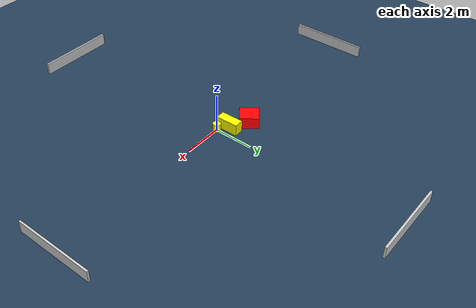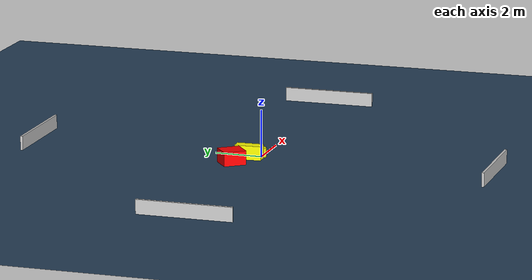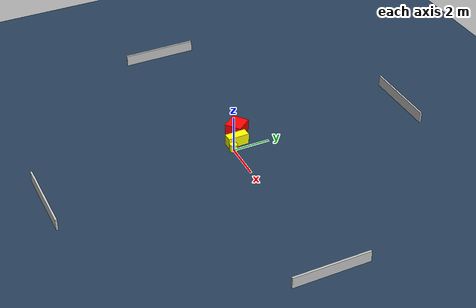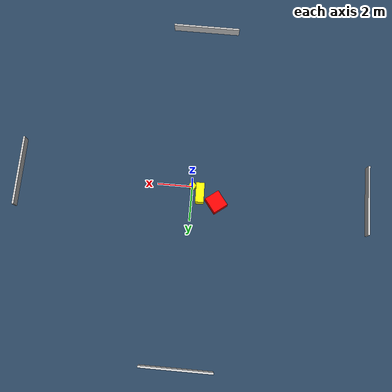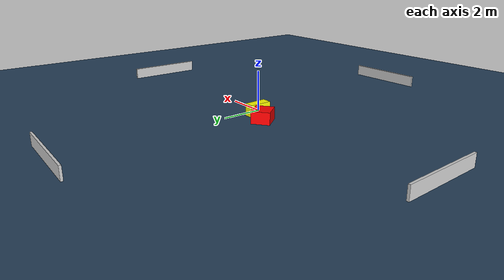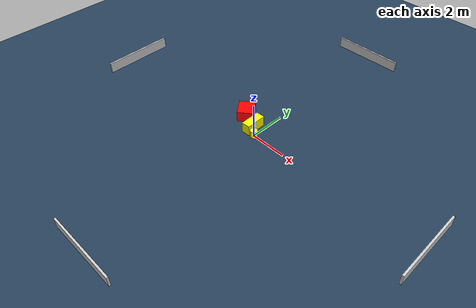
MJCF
<?xml version="1.0" ?>
<mujoco model="generated_environment">
  <option timestep="0.01" integrator="RK4" cone="elliptic"/>
  <default>
    <geom density="1"/>
  </default>
  <asset>
    <texture builtin="gradient" height="3072" name="skybox" rgb1="0.3 0.5 0.7" rgb2="0 0 0" type="skybox" width="512"/>
    <texture builtin="checker" height="300" name="groundplane" rgb1="0.2 0.3 0.4" rgb2="0.1 0.2 0.3" type="2d" width="300"/>
    <material name="groundplane" reflectance="0.2" texrepeat="5 5" texture="groundplane"/>
  </asset>
  <worldbody>
    <light dir="0 0 -1" directional="true" pos="0 0 1.5"/>
    <geom condim="3" friction="0.5 0.005 0.001" material="groundplane" name="floor" pos="0 0 0" size="0 0 0.05" type="plane"/>
    <body name="walls">
      <geom name="wall_1" condim="4" pos="-10.0 0.0 0.3" rgba="0.800000011920929 0.800000011920929 0.800000011920929 1.0" size="0.05 2.0 0.3" type="box"/>
      <geom name="wall_2" condim="4" pos="10.0 0.0 0.3" rgba="0.800000011920929 0.800000011920929 0.800000011920929 1.0" size="0.05 2.0 0.3" type="box"/>
      <geom name="wall_3" condim="4" pos="0.0 -10.0 0.3" rgba="0.800000011920929 0.800000011920929 0.800000011920929 1.0" size="2.0 0.05 0.3" type="box"/>
      <geom name="wall_4" condim="4" pos="0.0 10.0 0.3" rgba="0.800000011920929 0.800000011920929 0.800000011920929 1.0" size="2.0 0.05 0.3" type="box"/>
    </body>
    <body name="robot">
      <joint name="joint_x" type="slide" pos="0 0 0" axis="1 0 0"/>
      <joint name="joint_y" type="slide" pos="0 0 0" axis="0 1 0"/>
      <geom name="robot" type="cylinder" pos="0.0 0.0 0.2" size="0.2 0.2 0.0" mass="5.0" friction="1.0 0.005 0.0001" condim="4" rgba="1.0 1.0 0.0 1.0"/>
    </body>
    <body name="obstacle_1_movable">
      <geom name="obstacle_1_movable" condim="4" pos="-0.45559529917801284 0.40178831648369384 0.3" euler="0 0 91.30143680845333" friction="0.0 0.005 0.001" rgba="1.0 1.0 0.0 1.0" size="0.5678088447142238 0.23940570442613218 0.3" type="box" mass="0.1"/>
      <joint type="free"/>
    </body>
    <body name="obstacle_2_static">
      <geom name="obstacle_2_static" condim="4" pos="-1.4187788097960012 0.8597247407170873 0.3" euler="0 0 217.4063670877596" friction="0.0 0.005 0.001" rgba="1.0 0.0 0.0 1.0" size="0.44569236944734447 0.48104413464555873 0.3" type="box"/>
    </body>
  </worldbody>
  <actuator>
    <motor name="actuator_x" joint="joint_x" gear="1" ctrlrange="-1 1"/>
    <motor name="actuator_y" joint="joint_y" gear="1" ctrlrange="-1 1"/>
  </actuator>
</mujoco>
